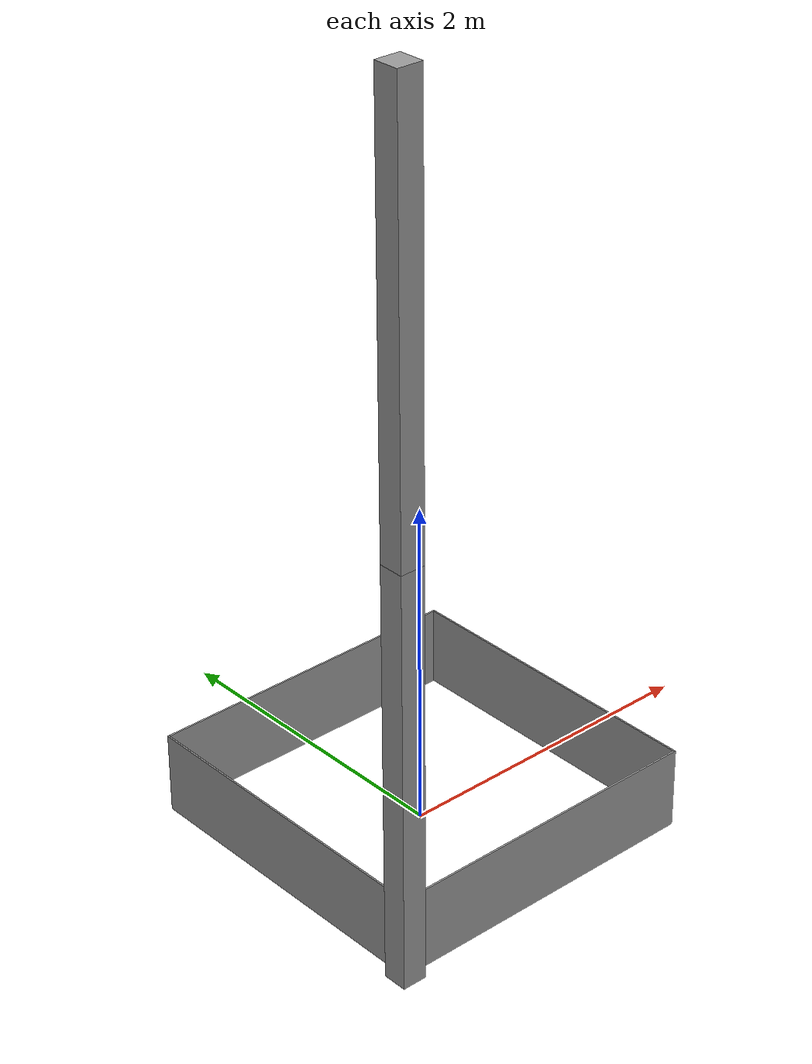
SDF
<?xml version='1.0'?>
<sdf version='1.7'>
  <model name='Zidovi'>
    <pose>-0.035 -0.034994 0 0 -0 0</pose>
    <link name='Floor_0'>
      <collision name='Floor_0_Collision'>
        <geometry>
          <box>
            <size>0 0 0.1</size>
          </box>
        </geometry>
        <pose>0 0 0.05 0 -0 0</pose>
      </collision>
      <visual name='Floor_0_Visual'>
        <pose>0 0 0.05 0 -0 0</pose>
        <geometry>
          <box>
            <size>0 0 0.1</size>
          </box>
        </geometry>
        <material>
          <script>
            <uri>file://media/materials/scripts/gazebo.material</uri>
            <name>Gazebo/Grey</name>
          </script>
          <ambient>1 1 1 1</ambient>
        </material>
        <meta>
          <layer>1</layer>
        </meta>
      </visual>
      <pose>-0.965 -0.965006 2.5 0 -0 0</pose>
    </link>
    <link name='Wall_0'>
      <collision name='Wall_0_Collision'>
        <geometry>
          <box>
            <size>2.01003 0.01 0.5</size>
          </box>
        </geometry>
        <pose>0 0 0.25 0 -0 0</pose>
      </collision>
      <visual name='Wall_0_Visual'>
        <pose>0 0 0.25 0 -0 0</pose>
        <geometry>
          <box>
            <size>2.01003 0.01 0.5</size>
          </box>
        </geometry>
        <material>
          <script>
            <uri>file://media/materials/scripts/gazebo.material</uri>
            <name>Gazebo/Grey</name>
          </script>
          <ambient>1 1 1 1</ambient>
        </material>
        <meta>
          <layer>0</layer>
        </meta>
      </visual>
      <pose>-0.965 0.034994 0 0 -0 1.5708</pose>
    </link>
    <link name='Wall_1'>
      <collision name='Wall_1_Collision'>
        <geometry>
          <box>
            <size>2.01 0.01 0.5</size>
          </box>
        </geometry>
        <pose>0 0 0.25 0 -0 0</pose>
      </collision>
      <visual name='Wall_1_Visual'>
        <pose>0 0 0.25 0 -0 0</pose>
        <geometry>
          <box>
            <size>2.01 0.01 0.5</size>
          </box>
        </geometry>
        <material>
          <script>
            <uri>file://media/materials/scripts/gazebo.material</uri>
            <name>Gazebo/Grey</name>
          </script>
          <ambient>1 1 1 1</ambient>
        </material>
        <meta>
          <layer>0</layer>
        </meta>
      </visual>
      <pose>0.035 1.03499 0 0 -0 0</pose>
    </link>
    <link name='Wall_10'>
      <collision name='Wall_10_Collision'>
        <geometry>
          <box>
            <size>0.15 0.15 2.5</size>
          </box>
        </geometry>
        <pose>0 0 1.25 0 -0 0</pose>
      </collision>
      <visual name='Wall_10_Visual'>
        <pose>0 0 1.25 0 -0 0</pose>
        <geometry>
          <box>
            <size>0.15 0.15 2.5</size>
          </box>
        </geometry>
        <material>
          <script>
            <uri>file://media/materials/scripts/gazebo.material</uri>
            <name>Gazebo/Grey</name>
          </script>
          <ambient>1 1 1 1</ambient>
        </material>
        <meta>
          <layer>1</layer>
        </meta>
      </visual>
      <pose>-0.965 -0.965006 2.5 0 -0 0</pose>
    </link>
    <link name='Wall_2'>
      <collision name='Wall_2_Collision'>
        <geometry>
          <box>
            <size>2.01 0.01 0.5</size>
          </box>
        </geometry>
        <pose>0 0 0.25 0 -0 0</pose>
      </collision>
      <visual name='Wall_2_Visual'>
        <pose>0 0 0.25 0 -0 0</pose>
        <geometry>
          <box>
            <size>2.01 0.01 0.5</size>
          </box>
        </geometry>
        <material>
          <script>
            <uri>file://media/materials/scripts/gazebo.material</uri>
            <name>Gazebo/Grey</name>
          </script>
          <ambient>1 1 1 1</ambient>
        </material>
        <meta>
          <layer>0</layer>
        </meta>
      </visual>
      <pose>1.035 0.034994 0 0 -0 -1.5708</pose>
    </link>
    <link name='Wall_3'>
      <collision name='Wall_3_Collision'>
        <geometry>
          <box>
            <size>2.01 0.01 0.5</size>
          </box>
        </geometry>
        <pose>0 0 0.25 0 -0 0</pose>
      </collision>
      <visual name='Wall_3_Visual'>
        <pose>0 0 0.25 0 -0 0</pose>
        <geometry>
          <box>
            <size>2.01 0.01 0.5</size>
          </box>
        </geometry>
        <material>
          <script>
            <uri>file://media/materials/scripts/gazebo.material</uri>
            <name>Gazebo/Grey</name>
          </script>
          <ambient>1 1 1 1</ambient>
        </material>
        <meta>
          <layer>0</layer>
        </meta>
      </visual>
      <pose>0.035 -0.965006 0 0 -0 3.14159</pose>
    </link>
    <link name='Wall_4'>
      <collision name='Wall_4_Collision'>
        <geometry>
          <box>
            <size>0.15 0.15 2.5</size>
          </box>
        </geometry>
        <pose>0 0 1.25 0 -0 0</pose>
      </collision>
      <visual name='Wall_4_Visual'>
        <pose>0 0 1.25 0 -0 0</pose>
        <geometry>
          <box>
            <size>0.15 0.15 2.5</size>
          </box>
        </geometry>
        <material>
          <script>
            <uri>file://media/materials/scripts/gazebo.material</uri>
            <name>Gazebo/Grey</name>
          </script>
          <ambient>1 1 1 1</ambient>
        </material>
        <meta>
          <layer>0</layer>
        </meta>
      </visual>
      <pose>-0.965 -0.965006 0 0 -0 0</pose>
    </link>
    <static>1</static>
  </model>
</sdf>
